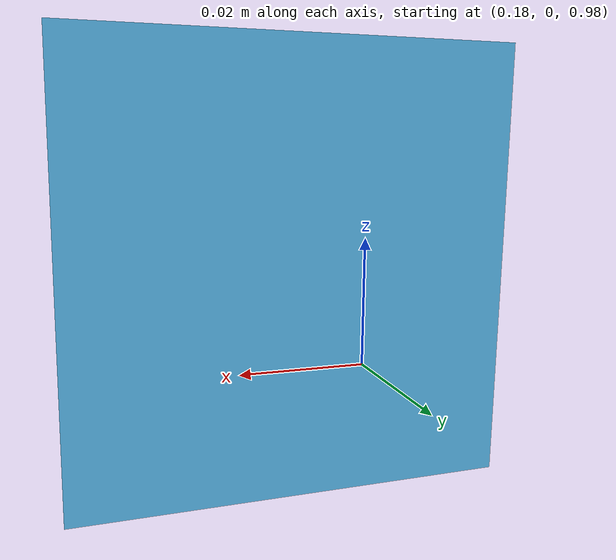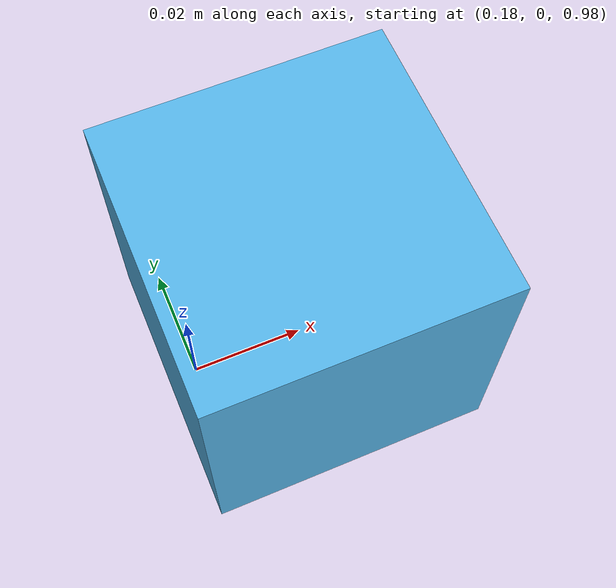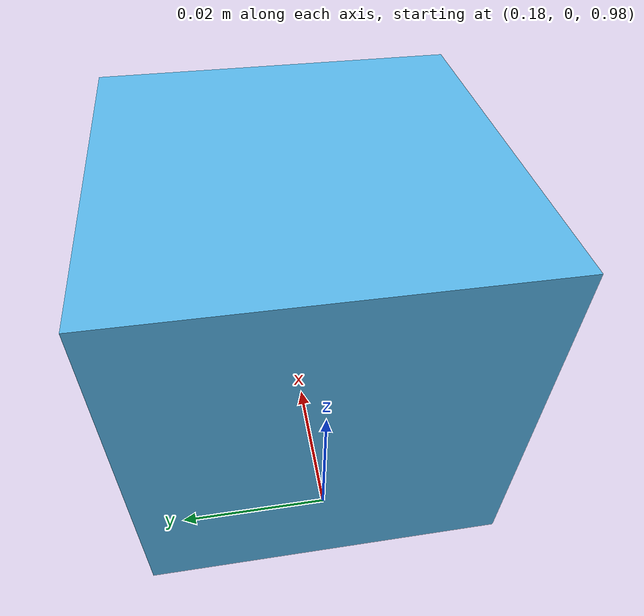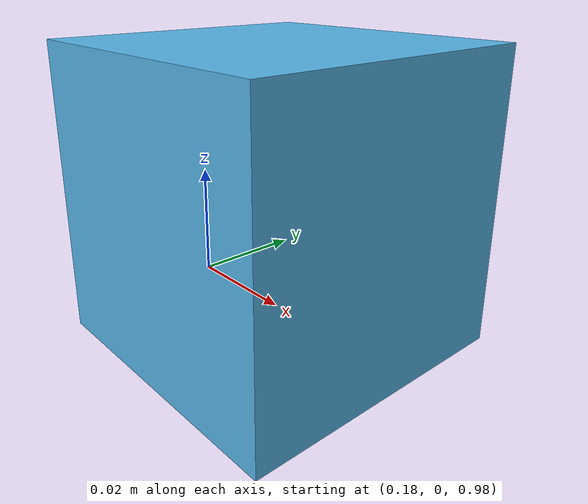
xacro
<robot name="camera">
    <link name="world"/>
    <joint name="world_joint" type="fixed">
        <origin xyz="0.2 0 1" rpy="-1.5707 1.5707 0"/>
        <parent link="world"/>
        <child link="camera_link"/>
    </joint>
    <link name="camera_link">
        <visual>
            <origin xyz="0 0 0" rpy="0 0 0"/>
            <geometry>
                <box size="0.05 0.05 0.05"/>
            </geometry>
        </visual>
        <inertial>
            <mass value="1e-5"/>
            <origin xyz="0 0 0" rpy="0 0 0"/>
            <inertia ixx="1e-6" ixy="0" ixz="0" iyy="1e-6" iyz="0" izz="1e-6"/>
        </inertial>
    </link>
    <gazebo reference="camera_link">
        <static>true</static>
        <turnGravityOff>true</turnGravityOff>
        <sensor type="camera" name="camera">
            <update_rate>30.0</update_rate>
            <camera name="head">
                <horizontal_fov>1.3962634</horizontal_fov>
                <image>
                    <width>1920</width>
                    <height>1080</height>
                    <format>R8G8B8</format>
                </image>
                <clip>
                    <near>0.02</near>
                    <far>300</far>
                </clip>
                <noise>
                    <type>gaussian</type>
                    <mean>0.0</mean>
                    <stddev>0.0</stddev>
                </noise>
            </camera>
            <plugin name="camera_controller" filename="libgazebo_ros_camera.so">
                <alwaysOn>true</alwaysOn>
                <updateRate>0.0</updateRate>
                <cameraName>camera</cameraName>
                <imageTopicName>image_raw</imageTopicName>
                <cameraInfoTopicName>camera_info</cameraInfoTopicName>
                <frameName>camera_link</frameName>
                <hackBaseline>0.07</hackBaseline>
                <distortionK1>0.0</distortionK1>
                <distortionK2>0.0</distortionK2>
                <distortionK3>0.0</distortionK3>
                <distortionT1>0.0</distortionT1>
                <distortionT2>0.0</distortionT2>
            </plugin>
        </sensor>
    </gazebo>
</robot>
